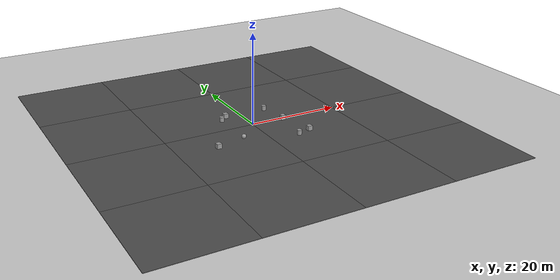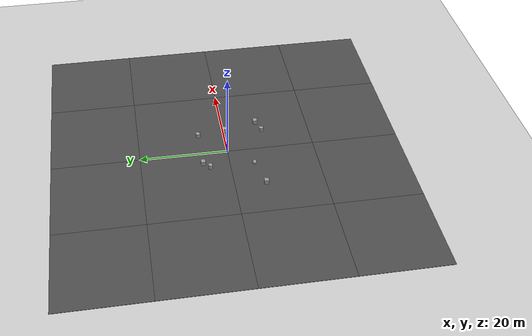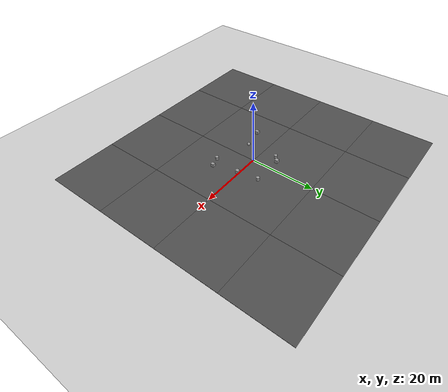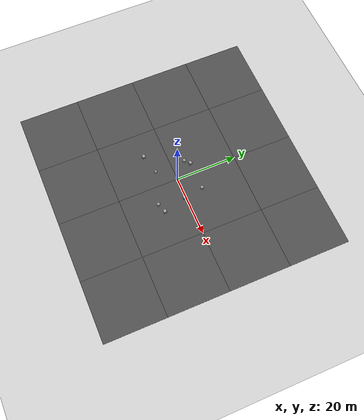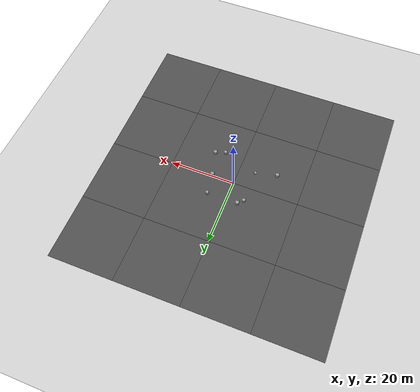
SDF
<sdf version="1.5">
 <world name="default">
  <light name="sun" type="directional">
   <pose>0 0 10 0 -0 0</pose>
   <diffuse>0.8 0.8 0.8 1</diffuse>
   <specular>0.2 0.2 0.2 1</specular>
   <attenuation>
    <range>1000</range>
    <constant>0.9</constant>
    <linear>0.01</linear>
    <quadratic>0.001</quadratic>
   </attenuation>
   <direction>-0.5 0.1 -0.9</direction>
  </light>
  <model name="ground_plane">
   <static>1</static>
   <link name="link">
    <collision name="collision">
     <geometry><plane><normal>0 0 1</normal><size>100 100</size></plane></geometry>
     <surface><friction><ode><mu>100</mu><mu2>50</mu2></ode></friction></surface>
    </collision>
    <visual name="visual">
     <cast_shadows>0</cast_shadows>
     <geometry><plane><normal>0 0 1</normal><size>100 100</size></plane></geometry>
     <material>
      <script><uri>file://media/materials/scripts/gazebo.material</uri><name>Gazebo/Grey</name></script>
     </material>
    </visual>
   </link>
  </model>
  <physics name="default_physics" default="0" type="ode">
   <max_step_size>0.001</max_step_size>
   <real_time_factor>1</real_time_factor>
   <real_time_update_rate>1000</real_time_update_rate>
   <gravity>0 0 -9.8</gravity>
   <magnetic_field>6e-06 2.3e-05 -4.2e-05</magnetic_field>
  </physics>
  <scene><ambient>0.4 0.4 0.4 1</ambient><background>0.7 0.7 0.7 1</background><shadows>1</shadows></scene>
  <spherical_coordinates>
   <surface_model>EARTH_WGS84</surface_model>
   <latitude_deg>0</latitude_deg>
   <longitude_deg>0</longitude_deg>
   <elevation>0</elevation>
   <heading_deg>0</heading_deg>
  </spherical_coordinates>
  <model name="asphalt_plane">
   <static>1</static>
   <link name="link">
    <collision name="collision"><geometry><box><size>20 20 0.1</size></box></geometry></collision>
    <visual name="visual">
     <cast_shadows>0</cast_shadows>
     <geometry><box><size>20 20 0.1</size></box></geometry>
     <material>
      <script>
       <uri>model://asphalt_plane/materials/scripts</uri>
       <uri>model://asphalt_plane/materials/textures</uri>
       <name>vrc/asphalt</name>
      </script>
     </material>
    </visual>
   </link>
   <pose>10 -10 0 0 -0 0</pose>
  </model>
  <model name="asphalt_plane_0">
   <static>1</static>
   <link name="link">
    <collision name="collision"><geometry><box><size>20 20 0.1</size></box></geometry></collision>
    <visual name="visual">
     <cast_shadows>0</cast_shadows>
     <geometry><box><size>20 20 0.1</size></box></geometry>
     <material>
      <script>
       <uri>model://asphalt_plane/materials/scripts</uri>
       <uri>model://asphalt_plane/materials/textures</uri>
       <name>vrc/asphalt</name>
      </script>
     </material>
    </visual>
   </link>
   <pose>10 10 0 0 -0 0</pose>
  </model>
  <model name="asphalt_plane_1">
   <static>1</static>
   <link name="link">
    <collision name="collision"><geometry><box><size>20 20 0.1</size></box></geometry></collision>
    <visual name="visual">
     <cast_shadows>0</cast_shadows>
     <geometry><box><size>20 20 0.1</size></box></geometry>
     <material>
      <script>
       <uri>model://asphalt_plane/materials/scripts</uri>
       <uri>model://asphalt_plane/materials/textures</uri>
       <name>vrc/asphalt</name>
      </script>
     </material>
    </visual>
   </link>
   <pose>-10 -10 0 0 -0 0</pose>
  </model>
  <model name="asphalt_plane_2">
   <static>1</static>
   <link name="link">
    <collision name="collision"><geometry><box><size>20 20 0.1</size></box></geometry></collision>
    <visual name="visual">
     <cast_shadows>0</cast_shadows>
     <geometry><box><size>20 20 0.1</size></box></geometry>
     <material>
      <script>
       <uri>model://asphalt_plane/materials/scripts</uri>
       <uri>model://asphalt_plane/materials/textures</uri>
       <name>vrc/asphalt</name>
      </script>
     </material>
    </visual>
   </link>
   <pose>-10 10 0 0 -0 0</pose>
  </model>
  <model name="unit_box_1">
   <pose>-11.4683 -7 0.55 0 -0 1.8e-05</pose>
   <link name="link">
    <inertial>
     <mass>1</mass>
     <inertia>
      <ixx>0.166667</ixx>
      <ixy>0</ixy>
      <ixz>0</ixz>
      <iyy>0.166667</iyy>
      <iyz>0</iyz>
      <izz>0.166667</izz>
     </inertia>
    </inertial>
    <collision name="collision"><geometry><box><size>1 1 1</size></box></geometry></collision>
    <visual name="visual">
     <geometry><box><size>1 1 1</size></box></geometry>
     <material>
      <script><name>Gazebo/Grey</name><uri>file://media/materials/scripts/gazebo.material</uri></script>
     </material>
    </visual>
   </link>
  </model>
  <model name="unit_sphere_1">
   <pose>-5 -5.46252 0.55 0 -0 0</pose>
   <link name="link">
    <inertial>
     <mass>1</mass>
     <inertia><ixx>0.1</ixx><ixy>0</ixy><ixz>0</ixz><iyy>0.1</iyy><iyz>0</iyz><izz>0.1</izz></inertia>
    </inertial>
    <collision name="collision"><geometry><sphere><radius>0.5</radius></sphere></geometry></collision>
    <visual name="visual">
     <geometry><sphere><radius>0.5</radius></sphere></geometry>
     <material>
      <script><name>Gazebo/Grey</name><uri>file://media/materials/scripts/gazebo.material</uri></script>
     </material>
    </visual>
   </link>
  </model>
  <model name="unit_cylinder_1">
   <pose>-5.00003 4.55991 0.549997 -5e-06 -2e-06 0.000227</pose>
   <link name="link">
    <inertial>
     <mass>1</mass>
     <inertia><ixx>0.145833</ixx><ixy>0</ixy><ixz>0</ixz><iyy>0.145833</iyy><iyz>0</iyz><izz>0.125</izz></inertia>
    </inertial>
    <collision name="collision">
     <geometry><cylinder><radius>0.5</radius><length>1</length></cylinder></geometry>
    </collision>
    <visual name="visual">
     <geometry><cylinder><radius>0.5</radius><length>1</length></cylinder></geometry>
     <material>
      <script><name>Gazebo/Grey</name><uri>file://media/materials/scripts/gazebo.material</uri></script>
     </material>
    </visual>
   </link>
  </model>
  <model name="unit_box_2">
   <pose>-3.46449 6 0.55 0 -0 1.8e-05</pose>
   <link name="link">
    <inertial>
     <mass>1</mass>
     <inertia>
      <ixx>0.166667</ixx>
      <ixy>0</ixy>
      <ixz>0</ixz>
      <iyy>0.166667</iyy>
      <iyz>0</iyz>
      <izz>0.166667</izz>
     </inertia>
    </inertial>
    <collision name="collision"><geometry><box><size>1 1 1</size></box></geometry></collision>
    <visual name="visual">
     <geometry><box><size>1 1 1</size></box></geometry>
     <material>
      <script><name>Gazebo/Grey</name><uri>file://media/materials/scripts/gazebo.material</uri></script>
     </material>
    </visual>
   </link>
  </model>
  <model name="unit_box_3">
   <pose>8.99999 -8 0.55 0 -0 1.8e-05</pose>
   <link name="link">
    <inertial>
     <mass>1</mass>
     <inertia>
      <ixx>0.166667</ixx>
      <ixy>0</ixy>
      <ixz>0</ixz>
      <iyy>0.166667</iyy>
      <iyz>0</iyz>
      <izz>0.166667</izz>
     </inertia>
    </inertial>
    <collision name="collision"><geometry><box><size>1 1 1</size></box></geometry></collision>
    <visual name="visual">
     <geometry><box><size>1 1 1</size></box></geometry>
     <material>
      <script><name>Gazebo/Grey</name><uri>file://media/materials/scripts/gazebo.material</uri></script>
     </material>
    </visual>
   </link>
  </model>
  <model name="unit_cylinder_2">
   <pose>6.00006 -8.99994 0.549992 3e-06 1e-06 6.4e-05</pose>
   <link name="link">
    <inertial>
     <mass>1</mass>
     <inertia><ixx>0.145833</ixx><ixy>0</ixy><ixz>0</ixz><iyy>0.145833</iyy><iyz>0</iyz><izz>0.125</izz></inertia>
    </inertial>
    <collision name="collision">
     <geometry><cylinder><radius>0.5</radius><length>1</length></cylinder></geometry>
    </collision>
    <visual name="visual">
     <geometry><cylinder><radius>0.5</radius><length>1</length></cylinder></geometry>
     <material>
      <script><name>Gazebo/Grey</name><uri>file://media/materials/scripts/gazebo.material</uri></script>
     </material>
    </visual>
   </link>
  </model>
  <model name="unit_box_4">
   <pose>6.99606 -0.500391 0.549995 -0 -1e-05 -0.013123</pose>
   <link name="link">
    <inertial>
     <mass>1</mass>
     <inertia>
      <ixx>0.166667</ixx>
      <ixy>0</ixy>
      <ixz>0</ixz>
      <iyy>0.166667</iyy>
      <iyz>0</iyz>
      <izz>0.166667</izz>
     </inertia>
    </inertial>
    <collision name="collision"><geometry><box><size>1 1 1</size></box></geometry></collision>
    <visual name="visual">
     <geometry><box><size>1 1 1</size></box></geometry>
     <material>
      <script><name>Gazebo/Grey</name><uri>file://media/materials/scripts/gazebo.material</uri></script>
     </material>
    </visual>
   </link>
  </model>
  <model name="unit_cylinder_3">
   <pose>6.00007 6.00007 0.549996 -7e-06 -2e-06 5.3e-05</pose>
   <link name="link">
    <inertial>
     <mass>1</mass>
     <inertia><ixx>0.145833</ixx><ixy>0</ixy><ixz>0</ixz><iyy>0.145833</iyy><iyz>0</iyz><izz>0.125</izz></inertia>
    </inertial>
    <collision name="collision">
     <geometry><cylinder><radius>0.5</radius><length>1</length></cylinder></geometry>
    </collision>
    <visual name="visual">
     <geometry><cylinder><radius>0.5</radius><length>1</length></cylinder></geometry>
     <material>
      <script><name>Gazebo/Grey</name><uri>file://media/materials/scripts/gazebo.material</uri></script>
     </material>
    </visual>
   </link>
  </model>
  <model name="asphalt_plane_3">
   <static>1</static>
   <link name="link">
    <collision name="collision"><geometry><box><size>20 20 0.1</size></box></geometry></collision>
    <visual name="visual">
     <cast_shadows>0</cast_shadows>
     <geometry><box><size>20 20 0.1</size></box></geometry>
     <material>
      <script>
       <uri>model://asphalt_plane/materials/scripts</uri>
       <uri>model://asphalt_plane/materials/textures</uri>
       <name>vrc/asphalt</name>
      </script>
     </material>
    </visual>
   </link>
   <pose>-10 -30 0 0 -0 0</pose>
  </model>
  <model name="asphalt_plane_0_0">
   <static>1</static>
   <link name="link">
    <collision name="collision"><geometry><box><size>20 20 0.1</size></box></geometry></collision>
    <visual name="visual">
     <cast_shadows>0</cast_shadows>
     <geometry><box><size>20 20 0.1</size></box></geometry>
     <material>
      <script>
       <uri>model://asphalt_plane/materials/scripts</uri>
       <uri>model://asphalt_plane/materials/textures</uri>
       <name>vrc/asphalt</name>
      </script>
     </material>
    </visual>
   </link>
   <pose>10 -30 0 0 -0 0</pose>
  </model>
  <model name="asphalt_plane_1_0">
   <static>1</static>
   <link name="link">
    <collision name="collision"><geometry><box><size>20 20 0.1</size></box></geometry></collision>
    <visual name="visual">
     <cast_shadows>0</cast_shadows>
     <geometry><box><size>20 20 0.1</size></box></geometry>
     <material>
      <script>
       <uri>model://asphalt_plane/materials/scripts</uri>
       <uri>model://asphalt_plane/materials/textures</uri>
       <name>vrc/asphalt</name>
      </script>
     </material>
    </visual>
   </link>
   <pose>30 -10 0 0 -0 0</pose>
  </model>
  <model name="asphalt_plane_2_0">
   <static>1</static>
   <link name="link">
    <collision name="collision"><geometry><box><size>20 20 0.1</size></box></geometry></collision>
    <visual name="visual">
     <cast_shadows>0</cast_shadows>
     <geometry><box><size>20 20 0.1</size></box></geometry>
     <material>
      <script>
       <uri>model://asphalt_plane/materials/scripts</uri>
       <uri>model://asphalt_plane/materials/textures</uri>
       <name>vrc/asphalt</name>
      </script>
     </material>
    </visual>
   </link>
   <pose>30 10 0 0 -0 0</pose>
  </model>
  <model name="asphalt_plane_3_0">
   <static>1</static>
   <link name="link">
    <collision name="collision"><geometry><box><size>20 20 0.1</size></box></geometry></collision>
    <visual name="visual">
     <cast_shadows>0</cast_shadows>
     <geometry><box><size>20 20 0.1</size></box></geometry>
     <material>
      <script>
       <uri>model://asphalt_plane/materials/scripts</uri>
       <uri>model://asphalt_plane/materials/textures</uri>
       <name>vrc/asphalt</name>
      </script>
     </material>
    </visual>
   </link>
   <pose>10 30 0 0 -0 0</pose>
  </model>
  <model name="asphalt_plane_4">
   <static>1</static>
   <link name="link">
    <collision name="collision"><geometry><box><size>20 20 0.1</size></box></geometry></collision>
    <visual name="visual">
     <cast_shadows>0</cast_shadows>
     <geometry><box><size>20 20 0.1</size></box></geometry>
     <material>
      <script>
       <uri>model://asphalt_plane/materials/scripts</uri>
       <uri>model://asphalt_plane/materials/textures</uri>
       <name>vrc/asphalt</name>
      </script>
     </material>
    </visual>
   </link>
   <pose>-10 30 0 0 -0 0</pose>
  </model>
  <model name="asphalt_plane_5">
   <static>1</static>
   <link name="link">
    <collision name="collision"><geometry><box><size>20 20 0.1</size></box></geometry></collision>
    <visual name="visual">
     <cast_shadows>0</cast_shadows>
     <geometry><box><size>20 20 0.1</size></box></geometry>
     <material>
      <script>
       <uri>model://asphalt_plane/materials/scripts</uri>
       <uri>model://asphalt_plane/materials/textures</uri>
       <name>vrc/asphalt</name>
      </script>
     </material>
    </visual>
   </link>
   <pose>-30 30 0 0 -0 0</pose>
  </model>
  <model name="asphalt_plane_9">
   <static>1</static>
   <link name="link">
    <collision name="collision"><geometry><box><size>20 20 0.1</size></box></geometry></collision>
    <visual name="visual">
     <cast_shadows>0</cast_shadows>
     <geometry><box><size>20 20 0.1</size></box></geometry>
     <material>
      <script>
       <uri>model://asphalt_plane/materials/scripts</uri>
       <uri>model://asphalt_plane/materials/textures</uri>
       <name>vrc/asphalt</name>
      </script>
     </material>
    </visual>
   </link>
   <pose>30 -30 0 0 -0 0</pose>
  </model>
  <model name="asphalt_plane_8_0">
   <static>1</static>
   <link name="link">
    <collision name="collision"><geometry><box><size>20 20 0.1</size></box></geometry></collision>
    <visual name="visual">
     <cast_shadows>0</cast_shadows>
     <geometry><box><size>20 20 0.1</size></box></geometry>
     <material>
      <script>
       <uri>model://asphalt_plane/materials/scripts</uri>
       <uri>model://asphalt_plane/materials/textures</uri>
       <name>vrc/asphalt</name>
      </script>
     </material>
    </visual>
   </link>
   <pose>-30 -30 0 0 -0 0</pose>
  </model>
  <model name="asphalt_plane_7_0">
   <static>1</static>
   <link name="link">
    <collision name="collision"><geometry><box><size>20 20 0.1</size></box></geometry></collision>
    <visual name="visual">
     <cast_shadows>0</cast_shadows>
     <geometry><box><size>20 20 0.1</size></box></geometry>
     <material>
      <script>
       <uri>model://asphalt_plane/materials/scripts</uri>
       <uri>model://asphalt_plane/materials/textures</uri>
       <name>vrc/asphalt</name>
      </script>
     </material>
    </visual>
   </link>
   <pose>-30 -10 0 0 -0 0</pose>
  </model>
  <model name="asphalt_plane_6_0">
   <static>1</static>
   <link name="link">
    <collision name="collision"><geometry><box><size>20 20 0.1</size></box></geometry></collision>
    <visual name="visual">
     <cast_shadows>0</cast_shadows>
     <geometry><box><size>20 20 0.1</size></box></geometry>
     <material>
      <script>
       <uri>model://asphalt_plane/materials/scripts</uri>
       <uri>model://asphalt_plane/materials/textures</uri>
       <name>vrc/asphalt</name>
      </script>
     </material>
    </visual>
   </link>
   <pose>-30 10 0 0 -0 0</pose>
  </model>
  <model name="asphalt_plane_10">
   <static>1</static>
   <link name="link">
    <collision name="collision"><geometry><box><size>20 20 0.1</size></box></geometry></collision>
    <visual name="visual">
     <cast_shadows>0</cast_shadows>
     <geometry><box><size>20 20 0.1</size></box></geometry>
     <material>
      <script>
       <uri>model://asphalt_plane/materials/scripts</uri>
       <uri>model://asphalt_plane/materials/textures</uri>
       <name>vrc/asphalt</name>
      </script>
     </material>
    </visual>
   </link>
   <pose>30 30 0 0 -0 0</pose>
  </model>
 </world>
</sdf>
